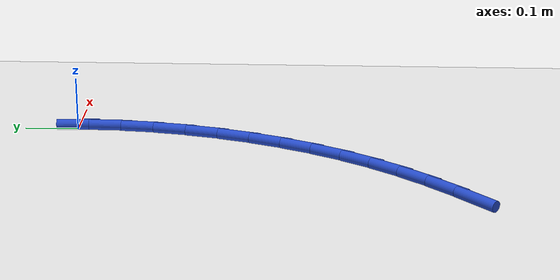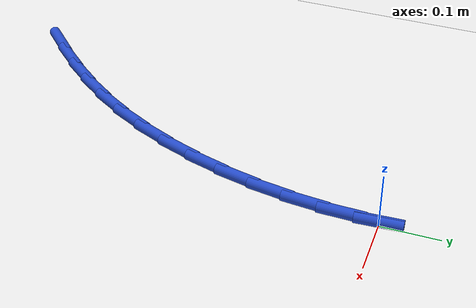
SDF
<sdf version="1.6">
 <world name="default">
  <model name="ground_plane">
   <static>1</static>
   <link name="link">
    <collision name="collision">
     <geometry><plane><normal>0 0 1</normal><size>100 100</size></plane></geometry>
     <surface><friction><ode><mu>100</mu><mu2>50</mu2></ode></friction></surface>
    </collision>
    <visual name="visual">
     <cast_shadows>0</cast_shadows>
     <geometry><plane><normal>0 0 1</normal><size>100 100</size></plane></geometry>
     <material>
      <script><uri>file://media/materials/scripts/gazebo.material</uri><name>Gazebo/WhiteGlow</name></script>
     </material>
    </visual>
   </link>
  </model>
  <model name="line">
   <link name="link_0">
    <pose>-3.122502256758253e-17 1.8041124150158794e-16 0.01 0 1.57 -1.51916268752843</pose>
    <collision name="collision">
     <geometry><cylinder><radius>0.01</radius><length>0.08</length></cylinder></geometry>
    </collision>
    <visual name="visual">
     <material>
      <script><name>Gazebo/Blue</name><uri>file://media/materials/scripts/gazebo.material</uri></script>
     </material>
     <geometry><cylinder><radius>0.01</radius><length>0.08</length></cylinder></geometry>
    </visual>
   </link>
   <link name="link_107">
    <pose>-0.3020679964672427 -0.7030049065349107 0.01 0 1.57 0.7775254069320562</pose>
    <collision name="collision">
     <geometry><cylinder><radius>0.01</radius><length>0.08</length></cylinder></geometry>
    </collision>
    <visual name="visual">
     <material>
      <script><name>Gazebo/Blue</name><uri>file://media/materials/scripts/gazebo.material</uri></script>
     </material>
     <geometry><cylinder><radius>0.01</radius><length>0.08</length></cylinder></geometry>
    </visual>
   </link>
   <link name="link_108">
    <pose>-0.2595590628582061 -0.6611600832316264 0.01 0 1.57 0.829858766281677</pose>
    <collision name="collision">
     <geometry><cylinder><radius>0.01</radius><length>0.08</length></cylinder></geometry>
    </collision>
    <visual name="visual">
     <material>
      <script><name>Gazebo/Blue</name><uri>file://media/materials/scripts/gazebo.material</uri></script>
     </material>
     <geometry><cylinder><radius>0.01</radius><length>0.08</length></cylinder></geometry>
    </visual>
   </link>
   <link name="link_109">
    <pose>-0.21986798249656975 -0.617772855434389 0.01 0 1.57 0.8901314422500827</pose>
    <collision name="collision">
     <geometry><cylinder><radius>0.01</radius><length>0.08</length></cylinder></geometry>
    </collision>
    <visual name="visual">
     <material>
      <script><name>Gazebo/Blue</name><uri>file://media/materials/scripts/gazebo.material</uri></script>
     </material>
     <geometry><cylinder><radius>0.01</radius><length>0.08</length></cylinder></geometry>
    </visual>
   </link>
   <link name="link_110">
    <pose>-0.18308350879573382 -0.5723465573549588 0.01 0 1.57 0.957058551536231</pose>
    <collision name="collision">
     <geometry><cylinder><radius>0.01</radius><length>0.08</length></cylinder></geometry>
    </collision>
    <visual name="visual">
     <material>
      <script><name>Gazebo/Blue</name><uri>file://media/materials/scripts/gazebo.material</uri></script>
     </material>
     <geometry><cylinder><radius>0.01</radius><length>0.08</length></cylinder></geometry>
    </visual>
   </link>
   <link name="link_111">
    <pose>-0.14929439516909934 -0.5243845232050972 0.01 0 1.57 1.0286362749880422</pose>
    <collision name="collision">
     <geometry><cylinder><radius>0.01</radius><length>0.08</length></cylinder></geometry>
    </collision>
    <visual name="visual">
     <material>
      <script><name>Gazebo/Blue</name><uri>file://media/materials/scripts/gazebo.material</uri></script>
     </material>
     <geometry><cylinder><radius>0.01</radius><length>0.08</length></cylinder></geometry>
    </visual>
   </link>
   <link name="link_112">
    <pose>-0.11859057571084589 -0.4734127974174664 0.01 0 1.57 1.099463451508162</pose>
    <collision name="collision">
     <geometry><cylinder><radius>0.01</radius><length>0.08</length></cylinder></geometry>
    </collision>
    <visual name="visual">
     <material>
      <script><name>Gazebo/Blue</name><uri>file://media/materials/scripts/gazebo.material</uri></script>
     </material>
     <geometry><cylinder><radius>0.01</radius><length>0.08</length></cylinder></geometry>
    </visual>
   </link>
   <link name="link_113">
    <pose>-0.09108745942361632 -0.4194474305371612 0.01 0 1.57 1.166489843450127</pose>
    <collision name="collision">
     <geometry><cylinder><radius>0.01</radius><length>0.08</length></cylinder></geometry>
    </collision>
    <visual name="visual">
     <material>
      <script><name>Gazebo/Blue</name><uri>file://media/materials/scripts/gazebo.material</uri></script>
     </material>
     <geometry><cylinder><radius>0.01</radius><length>0.08</length></cylinder></geometry>
    </visual>
   </link>
   <link name="link_114">
    <pose>-0.0669250300423852 -0.3629771644664381 0.01 0 1.57 1.230815156461346</pose>
    <collision name="collision">
     <geometry><cylinder><radius>0.01</radius><length>0.08</length></cylinder></geometry>
    </collision>
    <visual name="visual">
     <material>
      <script><name>Gazebo/Blue</name><uri>file://media/materials/scripts/gazebo.material</uri></script>
     </material>
     <geometry><cylinder><radius>0.01</radius><length>0.08</length></cylinder></geometry>
    </visual>
   </link>
   <link name="link_115">
    <pose>-0.046244271874635055 -0.30450998697237974 0.01 0 1.57 1.2936105365332102</pose>
    <collision name="collision">
     <geometry><cylinder><radius>0.01</radius><length>0.08</length></cylinder></geometry>
    </collision>
    <visual name="visual">
     <material>
      <script><name>Gazebo/Blue</name><uri>file://media/materials/scripts/gazebo.material</uri></script>
     </material>
     <geometry><cylinder><radius>0.01</radius><length>0.08</length></cylinder></geometry>
    </visual>
   </link>
   <link name="link_116">
    <pose>-0.029186169227849133 -0.24455388582207135 0.01 0 1.57 1.3559948792500032</pose>
    <collision name="collision">
     <geometry><cylinder><radius>0.01</radius><length>0.08</length></cylinder></geometry>
    </collision>
    <visual name="visual">
     <material>
      <script><name>Gazebo/Blue</name><uri>file://media/materials/scripts/gazebo.material</uri></script>
     </material>
     <geometry><cylinder><radius>0.01</radius><length>0.08</length></cylinder></geometry>
    </visual>
   </link>
   <link name="link_117">
    <pose>-0.015891706409509935 -0.18361684878259574 0.01 0 1.57 1.419067397995674</pose>
    <collision name="collision">
     <geometry><cylinder><radius>0.01</radius><length>0.08</length></cylinder></geometry>
    </collision>
    <visual name="visual">
     <material>
      <script><name>Gazebo/Blue</name><uri>file://media/materials/scripts/gazebo.material</uri></script>
     </material>
     <geometry><cylinder><radius>0.01</radius><length>0.08</length></cylinder></geometry>
    </visual>
   </link>
   <link name="link_118">
    <pose>-0.006501867727100177 -0.12220686362103632 0.01 0 1.57 1.483940289302727</pose>
    <collision name="collision">
     <geometry><cylinder><radius>0.01</radius><length>0.08</length></cylinder></geometry>
    </collision>
    <visual name="visual">
     <material>
      <script><name>Gazebo/Blue</name><uri>file://media/materials/scripts/gazebo.material</uri></script>
     </material>
     <geometry><cylinder><radius>0.01</radius><length>0.08</length></cylinder></geometry>
    </visual>
   </link>
   <link name="link_119">
    <pose>-0.0011576374881025892 -0.060831918104476065 0.01 0 1.57 1.5517685234569427</pose>
    <collision name="collision">
     <geometry><cylinder><radius>0.01</radius><length>0.08</length></cylinder></geometry>
    </collision>
    <visual name="visual">
     <material>
      <script><name>Gazebo/Blue</name><uri>file://media/materials/scripts/gazebo.material</uri></script>
     </material>
     <geometry><cylinder><radius>0.01</radius><length>0.08</length></cylinder></geometry>
    </visual>
   </link>
   <link name="link_120">
    <pose>-4.85722573273506e-17 0.0 0.01 0 1.57 -1.517819985029045</pose>
    <collision name="collision">
     <geometry><cylinder><radius>0.01</radius><length>0.08</length></cylinder></geometry>
    </collision>
    <visual name="visual">
     <material>
      <script><name>Gazebo/Blue</name><uri>file://media/materials/scripts/gazebo.material</uri></script>
     </material>
     <geometry><cylinder><radius>0.01</radius><length>0.08</length></cylinder></geometry>
    </visual>
   </link>
  </model>
 </world>
</sdf>
